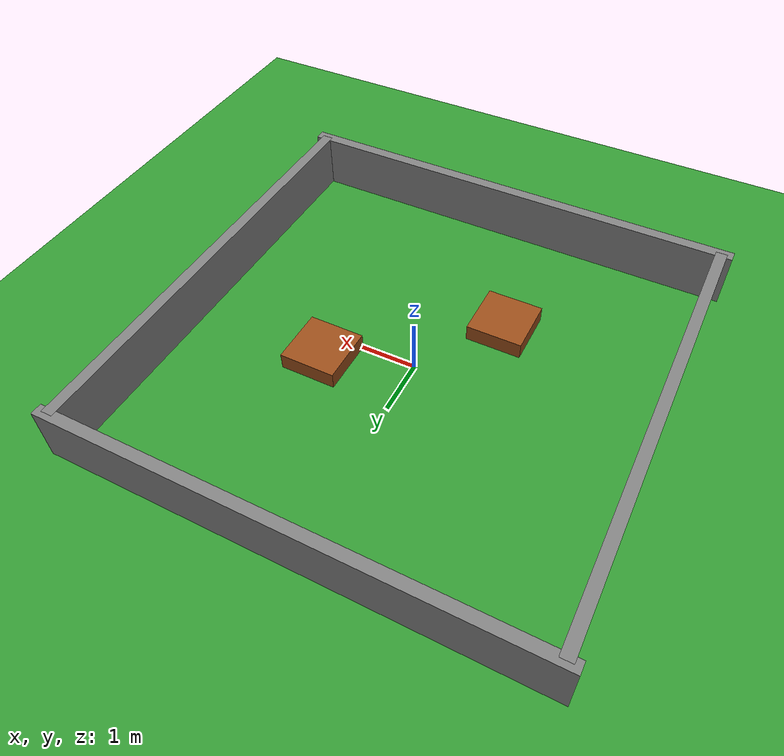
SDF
<?xml version="1.0" ?>
<sdf version="1.8">
  <world name="coverage_obstacles_world">

    <!-- 必須プラグイン                                                      -->
    <plugin filename="gz-sim-physics-system"
            name="gz::sim::systems::Physics">
    </plugin>
    <plugin filename="gz-sim-user-commands-system"
            name="gz::sim::systems::UserCommands">
    </plugin>
    <plugin filename="gz-sim-scene-broadcaster-system"
            name="gz::sim::systems::SceneBroadcaster">
    </plugin>
    <plugin filename="gz-sim-sensors-system"
            name="gz::sim::systems::Sensors">
      <render_engine>ogre2</render_engine>
    </plugin>

    <!-- 太陽光                                                              -->
    <light type="directional" name="sun">
      <cast_shadows>true</cast_shadows>
      <pose>0 0 10 0 0 0</pose>
      <diffuse>0.8 0.8 0.8 1</diffuse>
      <specular>0.2 0.2 0.2 1</specular>
      <attenuation>
        <range>1000</range>
        <constant>0.9</constant>
        <linear>0.01</linear>
        <quadratic>0.001</quadratic>
      </attenuation>
      <direction>-0.5 0.1 -0.9</direction>
    </light>

    <!-- 地面 (緑色の芝生)                                                   -->
    <model name="ground_plane">
      <static>true</static>
      <link name="link">
        <collision name="collision">
          <geometry>
            <plane>
              <normal>0 0 1</normal>
              <size>100 100</size>
            </plane>
          </geometry>
        </collision>
        <visual name="visual">
          <geometry>
            <plane>
              <normal>0 0 1</normal>
              <size>100 100</size>
            </plane>
          </geometry>
          <material>
            <ambient>0.2 0.6 0.2 1</ambient>
            <diffuse>0.2 0.6 0.2 1</diffuse>
            <specular>0.1 0.1 0.1 1</specular>
          </material>
        </visual>
      </link>
    </model>

    <!-- 外壁 (8m x 8m の正方形)                                            -->
    <!-- 壁の厚さ: 0.2m, 高さ: 1.0m -->

    <!-- 北壁 (Y = +4) -->
    <model name="wall_north">
      <pose>0 4 0.5 0 0 0</pose>
      <static>true</static>
      <link name="link">
        <collision name="collision">
          <geometry><box><size>8.4 0.2 1.0</size></box></geometry>
        </collision>
        <visual name="visual">
          <geometry><box><size>8.4 0.2 1.0</size></box></geometry>
          <material>
            <ambient>0.5 0.5 0.5 1</ambient>
            <diffuse>0.5 0.5 0.5 1</diffuse>
          </material>
        </visual>
      </link>
    </model>

    <!-- 南壁 (Y = -4) -->
    <model name="wall_south">
      <pose>0 -4 0.5 0 0 0</pose>
      <static>true</static>
      <link name="link">
        <collision name="collision">
          <geometry><box><size>8.4 0.2 1.0</size></box></geometry>
        </collision>
        <visual name="visual">
          <geometry><box><size>8.4 0.2 1.0</size></box></geometry>
          <material>
            <ambient>0.5 0.5 0.5 1</ambient>
            <diffuse>0.5 0.5 0.5 1</diffuse>
          </material>
        </visual>
      </link>
    </model>

    <!-- 東壁 (X = +4) -->
    <model name="wall_east">
      <pose>4 0 0.5 0 0 0</pose>
      <static>true</static>
      <link name="link">
        <collision name="collision">
          <geometry><box><size>0.2 8.0 1.0</size></box></geometry>
        </collision>
        <visual name="visual">
          <geometry><box><size>0.2 8.0 1.0</size></box></geometry>
          <material>
            <ambient>0.5 0.5 0.5 1</ambient>
            <diffuse>0.5 0.5 0.5 1</diffuse>
          </material>
        </visual>
      </link>
    </model>

    <!-- 西壁 (X = -4) -->
    <model name="wall_west">
      <pose>-4 0 0.5 0 0 0</pose>
      <static>true</static>
      <link name="link">
        <collision name="collision">
          <geometry><box><size>0.2 8.0 1.0</size></box></geometry>
        </collision>
        <visual name="visual">
          <geometry><box><size>0.2 8.0 1.0</size></box></geometry>
          <material>
            <ambient>0.5 0.5 0.5 1</ambient>
            <diffuse>0.5 0.5 0.5 1</diffuse>
          </material>
        </visual>
      </link>
    </model>

    <!-- 障害物 1: 1m x 1m 箱型 (world: 1.5, 0.5)                          -->
    <model name="obstacle_1">
      <pose>1.5 0.5 0.15 0 0 0</pose>
      <static>true</static>
      <link name="link">
        <collision name="collision">
          <geometry><box><size>1.0 1.0 0.3</size></box></geometry>
        </collision>
        <visual name="visual">
          <geometry><box><size>1.0 1.0 0.3</size></box></geometry>
          <material>
            <ambient>0.6 0.3 0.1 1</ambient>
            <diffuse>0.6 0.3 0.1 1</diffuse>
          </material>
        </visual>
        <inertial>
          <mass>10.0</mass>
          <inertia>
            <ixx>0.83</ixx><iyy>0.83</iyy><izz>1.67</izz>
          </inertia>
        </inertial>
      </link>
    </model>

    <!-- 障害物 2: 1m x 1m 箱型 (world: -1.0, -1.5)                        -->
    <model name="obstacle_2">
      <pose>-1.0 -1.5 0.15 0 0 0</pose>
      <static>true</static>
      <link name="link">
        <collision name="collision">
          <geometry><box><size>1.0 1.0 0.3</size></box></geometry>
        </collision>
        <visual name="visual">
          <geometry><box><size>1.0 1.0 0.3</size></box></geometry>
          <material>
            <ambient>0.6 0.3 0.1 1</ambient>
            <diffuse>0.6 0.3 0.1 1</diffuse>
          </material>
        </visual>
        <inertial>
          <mass>10.0</mass>
          <inertia>
            <ixx>0.83</ixx><iyy>0.83</iyy><izz>1.67</izz>
          </inertia>
        </inertial>
      </link>
    </model>

  </world>
</sdf>
